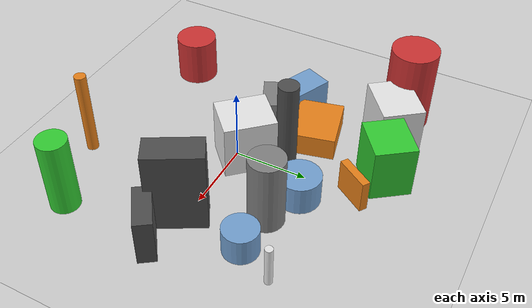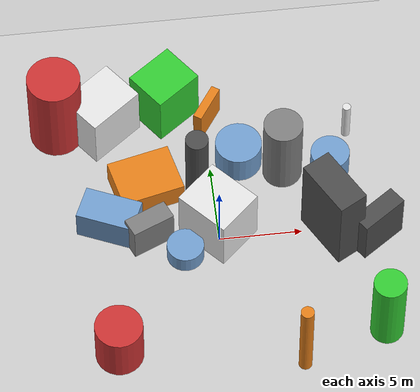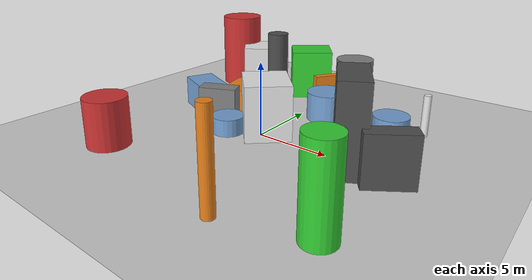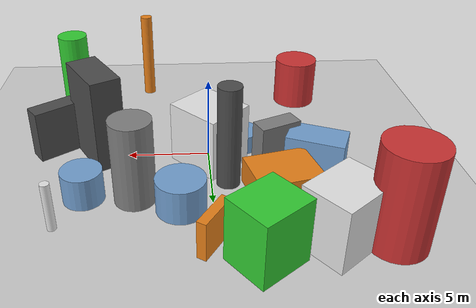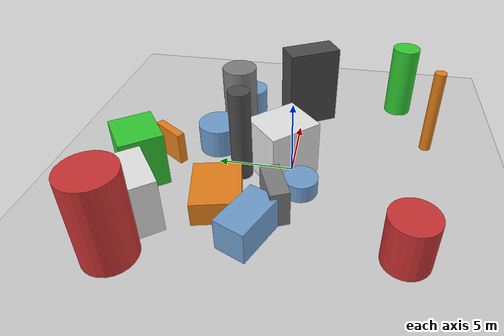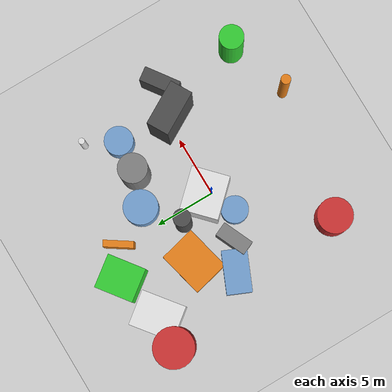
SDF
<?xml version='1.0'?>
<sdf version='1.6'>
  <world name='default'>
    <!-- Sun light -->
    <light name='sun' type='directional'>
      <cast_shadows>1</cast_shadows>
      <pose>0 0 10 0 0 0</pose>
      <diffuse>0.8 0.8 0.8 1</diffuse>
      <specular>0.2 0.2 0.2 1</specular>
      <attenuation>
        <range>1000</range>
        <constant>0.9</constant>
        <linear>0.01</linear>
        <quadratic>0.001</quadratic>
      </attenuation>
      <direction>-0.5 0.1 -0.9</direction>
    </light>

    <!-- Ground plane -->
    <model name='ground_plane'>
      <static>1</static>
      <link name='link'>
        <collision name='collision'>
          <geometry>
            <plane>
              <normal>0 0 1</normal>
              <size>100 100</size>
            </plane>
          </geometry>
          <surface>
            <contact>
              <collide_bitmask>65535</collide_bitmask>
              <ode/>
            </contact>
            <friction>
              <ode>
                <mu>100</mu>
                <mu2>50</mu2>
              </ode>
              <torsional><ode/></torsional>
            </friction>
            <bounce/>
          </surface>
          <max_contacts>10</max_contacts>
        </collision>
        <visual name='visual'>
          <cast_shadows>0</cast_shadows>
          <geometry>
            <plane>
              <normal>0 0 1</normal>
              <size>100 100</size>
            </plane>
          </geometry>
          <material>
            <script>
              <uri>file://media/materials/scripts/gazebo.material</uri>
              <n>Gazebo/Grey</n>
            </script>
          </material>
        </visual>
      </link>
    </model>

    <!-- Environment -->
    <magnetic_field>6e-06 2.3e-05 -4.2e-05</magnetic_field>
    <atmosphere type='adiabatic'/>
    <physics name='default_physics' default='0' type='ode'>
      <gravity>0 0 -9.8</gravity>
      <max_step_size>0.004</max_step_size>
      <real_time_factor>1</real_time_factor>
      <real_time_update_rate>250</real_time_update_rate>
    </physics>
    <scene>
      <ambient>0.4 0.4 0.4 1</ambient>
      <background>0.7 0.7 0.7 1</background>
      <shadows>1</shadows>
    </scene>
    <wind/>
    <spherical_coordinates>
      <surface_model>EARTH_WGS84</surface_model>
      <latitude_deg>0</latitude_deg>
      <longitude_deg>0</longitude_deg>
      <elevation>0</elevation>
      <heading_deg>0</heading_deg>
    </spherical_coordinates>

    <!-- ============ OBSTACLES (19) ============ -->
    <model name='obs_00'>
      <static>1</static>
      <link name='link'>
        <visual name='visual'>
          <geometry>
            <box>
              <size>1.2031 2.6846 2.4529</size>
            </box>
          </geometry>
          <material>
            <script>
              <n>Gazebo/Grey</n>
              <uri>file://media/materials/scripts/gazebo.material</uri>
            </script>
            <ambient>0.5 0.5 0.5 1</ambient>
          </material>
        </visual>
        <collision name='collision'>
          <geometry>
            <box>
              <size>1.2031 2.6846 2.4529</size>
            </box>
          </geometry>
          <max_contacts>10</max_contacts>
          <surface>
            <contact><ode/></contact>
            <bounce/>
            <friction>
              <ode><mu>1</mu><mu2>1</mu2></ode>
              <torsional><ode/></torsional>
            </friction>
          </surface>
        </collision>
      </link>
      <pose>-4.1603 0.4397 1.2264 0 0 1.9873</pose>
    </model>

    <model name='obs_01'>
      <static>1</static>
      <link name='link'>
        <visual name='visual'>
          <geometry>
            <cylinder>
              <radius>0.3954</radius>
              <length>5.9728</length>
            </cylinder>
          </geometry>
          <material>
            <script>
              <n>Gazebo/Orange</n>
              <uri>file://media/materials/scripts/gazebo.material</uri>
            </script>
            <ambient>0.9 0.5 0.1 1</ambient>
          </material>
        </visual>
        <collision name='collision'>
          <geometry>
            <cylinder>
              <radius>0.3954</radius>
              <length>5.9728</length>
            </cylinder>
          </geometry>
          <max_contacts>10</max_contacts>
          <surface>
            <contact><ode/></contact>
            <bounce/>
            <friction>
              <ode><mu>1</mu><mu2>1</mu2></ode>
              <torsional><ode/></torsional>
            </friction>
          </surface>
        </collision>
      </link>
      <pose>4.0419 -9.0844 2.9864 0 0 2.8940</pose>
    </model>

    <model name='obs_02'>
      <static>1</static>
      <link name='link'>
        <visual name='visual'>
          <geometry>
            <cylinder>
              <radius>1.4345</radius>
              <length>3.2567</length>
            </cylinder>
          </geometry>
          <material>
            <script>
              <n>Gazebo/Red</n>
              <uri>file://media/materials/scripts/gazebo.material</uri>
            </script>
            <ambient>0.8 0.2 0.2 1</ambient>
          </material>
        </visual>
        <collision name='collision'>
          <geometry>
            <cylinder>
              <radius>1.4345</radius>
              <length>3.2567</length>
            </cylinder>
          </geometry>
          <max_contacts>10</max_contacts>
          <surface>
            <contact><ode/></contact>
            <bounce/>
            <friction>
              <ode><mu>1</mu><mu2>1</mu2></ode>
              <torsional><ode/></torsional>
            </friction>
          </surface>
        </collision>
      </link>
      <pose>-6.7169 -7.1910 1.6283 0 0 1.5830</pose>
    </model>

    <model name='obs_03'>
      <static>1</static>
      <link name='link'>
        <visual name='visual'>
          <geometry>
            <cylinder>
              <radius>1.1902</radius>
              <length>5.0796</length>
            </cylinder>
          </geometry>
          <material>
            <script>
              <n>Gazebo/Grey</n>
              <uri>file://media/materials/scripts/gazebo.material</uri>
            </script>
            <ambient>0.5 0.5 0.5 1</ambient>
          </material>
        </visual>
        <collision name='collision'>
          <geometry>
            <cylinder>
              <radius>1.1902</radius>
              <length>5.0796</length>
            </cylinder>
          </geometry>
          <max_contacts>10</max_contacts>
          <surface>
            <contact><ode/></contact>
            <bounce/>
            <friction>
              <ode><mu>1</mu><mu2>1</mu2></ode>
              <torsional><ode/></torsional>
            </friction>
          </surface>
        </collision>
      </link>
      <pose>4.3371 4.4312 2.5398 0 0 2.3900</pose>
    </model>

    <model name='obs_04'>
      <static>1</static>
      <link name='link'>
        <visual name='visual'>
          <geometry>
            <box>
              <size>2.8599 3.6285 3.6695</size>
            </box>
          </geometry>
          <material>
            <script>
              <n>Gazebo/White</n>
              <uri>file://media/materials/scripts/gazebo.material</uri>
            </script>
            <ambient>0.9 0.9 0.9 1</ambient>
          </material>
        </visual>
        <collision name='collision'>
          <geometry>
            <box>
              <size>2.8599 3.6285 3.6695</size>
            </box>
          </geometry>
          <max_contacts>10</max_contacts>
          <surface>
            <contact><ode/></contact>
            <bounce/>
            <friction>
              <ode><mu>1</mu><mu2>1</mu2></ode>
              <torsional><ode/></torsional>
            </friction>
          </surface>
        </collision>
      </link>
      <pose>-6.2491 8.6043 1.8348 0 0 2.2309</pose>
    </model>

    <model name='obs_05'>
      <static>1</static>
      <link name='link'>
        <visual name='visual'>
          <geometry>
            <cylinder>
              <radius>1.1171</radius>
              <length>1.1769</length>
            </cylinder>
          </geometry>
          <material>
            <script>
              <n>Gazebo/Blue</n>
              <uri>file://media/materials/scripts/gazebo.material</uri>
            </script>
            <ambient>0.447 0.624 0.812 1</ambient>
          </material>
        </visual>
        <collision name='collision'>
          <geometry>
            <cylinder>
              <radius>1.1171</radius>
              <length>1.1769</length>
            </cylinder>
          </geometry>
          <max_contacts>10</max_contacts>
          <surface>
            <contact><ode/></contact>
            <bounce/>
            <friction>
              <ode><mu>1</mu><mu2>1</mu2></ode>
              <torsional><ode/></torsional>
            </friction>
          </surface>
        </collision>
      </link>
      <pose>-2.1421 -0.8591 0.5885 0 0 2.5394</pose>
    </model>

    <model name='obs_06'>
      <static>1</static>
      <link name='link'>
        <visual name='visual'>
          <geometry>
            <cylinder>
              <radius>0.2547</radius>
              <length>2.8688</length>
            </cylinder>
          </geometry>
          <material>
            <script>
              <n>Gazebo/White</n>
              <uri>file://media/materials/scripts/gazebo.material</uri>
            </script>
            <ambient>0.9 0.9 0.9 1</ambient>
          </material>
        </visual>
        <collision name='collision'>
          <geometry>
            <cylinder>
              <radius>0.2547</radius>
              <length>2.8688</length>
            </cylinder>
          </geometry>
          <max_contacts>10</max_contacts>
          <surface>
            <contact><ode/></contact>
            <bounce/>
            <friction>
              <ode><mu>1</mu><mu2>1</mu2></ode>
              <torsional><ode/></torsional>
            </friction>
          </surface>
        </collision>
      </link>
      <pose>8.5325 6.7493 1.4344 0 0 0.1667</pose>
    </model>

    <model name='obs_07'>
      <static>1</static>
      <link name='link'>
        <visual name='visual'>
          <geometry>
            <cylinder>
              <radius>1.4143</radius>
              <length>2.0250</length>
            </cylinder>
          </geometry>
          <material>
            <script>
              <n>Gazebo/Blue</n>
              <uri>file://media/materials/scripts/gazebo.material</uri>
            </script>
            <ambient>0.447 0.624 0.812 1</ambient>
          </material>
        </visual>
        <collision name='collision'>
          <geometry>
            <cylinder>
              <radius>1.4143</radius>
              <length>2.0250</length>
            </cylinder>
          </geometry>
          <max_contacts>10</max_contacts>
          <surface>
            <contact><ode/></contact>
            <bounce/>
            <friction>
              <ode><mu>1</mu><mu2>1</mu2></ode>
              <torsional><ode/></torsional>
            </friction>
          </surface>
        </collision>
      </link>
      <pose>1.7762 5.4429 1.0125 0 0 3.0899</pose>
    </model>

    <model name='obs_08'>
      <static>1</static>
      <link name='link'>
        <visual name='visual'>
          <geometry>
            <cylinder>
              <radius>0.6960</radius>
              <length>6.2752</length>
            </cylinder>
          </geometry>
          <material>
            <script>
              <n>Gazebo/DarkGrey</n>
              <uri>file://media/materials/scripts/gazebo.material</uri>
            </script>
            <ambient>0.3 0.3 0.3 1</ambient>
          </material>
        </visual>
        <collision name='collision'>
          <geometry>
            <cylinder>
              <radius>0.6960</radius>
              <length>6.2752</length>
            </cylinder>
          </geometry>
          <max_contacts>10</max_contacts>
          <surface>
            <contact><ode/></contact>
            <bounce/>
            <friction>
              <ode><mu>1</mu><mu2>1</mu2></ode>
              <torsional><ode/></torsional>
            </friction>
          </surface>
        </collision>
      </link>
      <pose>-0.9899 3.1691 3.1376 0 0 2.1696</pose>
    </model>

    <model name='obs_09'>
      <static>1</static>
      <link name='link'>
        <visual name='visual'>
          <geometry>
            <cylinder>
              <radius>0.9873</radius>
              <length>5.3128</length>
            </cylinder>
          </geometry>
          <material>
            <script>
              <n>Gazebo/Green</n>
              <uri>file://media/materials/scripts/gazebo.material</uri>
            </script>
            <ambient>0.2 0.8 0.2 1</ambient>
          </material>
        </visual>
        <collision name='collision'>
          <geometry>
            <cylinder>
              <radius>0.9873</radius>
              <length>5.3128</length>
            </cylinder>
          </geometry>
          <max_contacts>10</max_contacts>
          <surface>
            <contact><ode/></contact>
            <bounce/>
            <friction>
              <ode><mu>1</mu><mu2>1</mu2></ode>
              <torsional><ode/></torsional>
            </friction>
          </surface>
        </collision>
      </link>
      <pose>9.1238 -7.3073 2.6564 0 0 1.1268</pose>
    </model>

    <model name='obs_10'>
      <static>1</static>
      <link name='link'>
        <visual name='visual'>
          <geometry>
            <box>
              <size>3.5269 3.0984 3.8064</size>
            </box>
          </geometry>
          <material>
            <script>
              <n>Gazebo/White</n>
              <uri>file://media/materials/scripts/gazebo.material</uri>
            </script>
            <ambient>0.9 0.9 0.9 1</ambient>
          </material>
        </visual>
        <collision name='collision'>
          <geometry>
            <box>
              <size>3.5269 3.0984 3.8064</size>
            </box>
          </geometry>
          <max_contacts>10</max_contacts>
          <surface>
            <contact><ode/></contact>
            <bounce/>
            <friction>
              <ode><mu>1</mu><mu2>1</mu2></ode>
              <torsional><ode/></torsional>
            </friction>
          </surface>
        </collision>
      </link>
      <pose>-0.0234 0.6073 1.9032 0 0 2.3232</pose>
    </model>

    <model name='obs_11'>
      <static>1</static>
      <link name='link'>
        <visual name='visual'>
          <geometry>
            <cylinder>
              <radius>1.6241</radius>
              <length>5.8729</length>
            </cylinder>
          </geometry>
          <material>
            <script>
              <n>Gazebo/Red</n>
              <uri>file://media/materials/scripts/gazebo.material</uri>
            </script>
            <ambient>0.8 0.2 0.2 1</ambient>
          </material>
        </visual>
        <collision name='collision'>
          <geometry>
            <cylinder>
              <radius>1.6241</radius>
              <length>5.8729</length>
            </cylinder>
          </geometry>
          <max_contacts>10</max_contacts>
          <surface>
            <contact><ode/></contact>
            <bounce/>
            <friction>
              <ode><mu>1</mu><mu2>1</mu2></ode>
              <torsional><ode/></torsional>
            </friction>
          </surface>
        </collision>
      </link>
      <pose>-9.0286 8.7062 2.9364 0 0 1.6051</pose>
    </model>

    <model name='obs_12'>
      <static>1</static>
      <link name='link'>
        <visual name='visual'>
          <geometry>
            <box>
              <size>3.7427 1.8564 5.7835</size>
            </box>
          </geometry>
          <material>
            <script>
              <n>Gazebo/DarkGrey</n>
              <uri>file://media/materials/scripts/gazebo.material</uri>
            </script>
            <ambient>0.3 0.3 0.3 1</ambient>
          </material>
        </visual>
        <collision name='collision'>
          <geometry>
            <box>
              <size>3.7427 1.8564 5.7835</size>
            </box>
          </geometry>
          <max_contacts>10</max_contacts>
          <surface>
            <contact><ode/></contact>
            <bounce/>
            <friction>
              <ode><mu>1</mu><mu2>1</mu2></ode>
              <torsional><ode/></torsional>
            </friction>
          </surface>
        </collision>
      </link>
      <pose>6.7763 -0.3414 2.8918 0 0 2.0876</pose>
    </model>

    <model name='obs_13'>
      <static>1</static>
      <link name='link'>
        <visual name='visual'>
          <geometry>
            <box>
              <size>2.4324 0.5454 2.2567</size>
            </box>
          </geometry>
          <material>
            <script>
              <n>Gazebo/Orange</n>
              <uri>file://media/materials/scripts/gazebo.material</uri>
            </script>
            <ambient>0.9 0.5 0.1 1</ambient>
          </material>
        </visual>
        <collision name='collision'>
          <geometry>
            <box>
              <size>2.4324 0.5454 2.2567</size>
            </box>
          </geometry>
          <max_contacts>10</max_contacts>
          <surface>
            <contact><ode/></contact>
            <bounce/>
            <friction>
              <ode><mu>1</mu><mu2>1</mu2></ode>
              <torsional><ode/></torsional>
            </friction>
          </surface>
        </collision>
      </link>
      <pose>0.1667 8.4232 1.1284 0 0 0.9822</pose>
    </model>

    <model name='obs_14'>
      <static>1</static>
      <link name='link'>
        <visual name='visual'>
          <geometry>
            <box>
              <size>3.5116 2.0507 2.1277</size>
            </box>
          </geometry>
          <material>
            <script>
              <n>Gazebo/Blue</n>
              <uri>file://media/materials/scripts/gazebo.material</uri>
            </script>
            <ambient>0.447 0.624 0.812 1</ambient>
          </material>
        </visual>
        <collision name='collision'>
          <geometry>
            <box>
              <size>3.5116 2.0507 2.1277</size>
            </box>
          </geometry>
          <max_contacts>10</max_contacts>
          <surface>
            <contact><ode/></contact>
            <bounce/>
            <friction>
              <ode><mu>1</mu><mu2>1</mu2></ode>
              <torsional><ode/></torsional>
            </friction>
          </surface>
        </collision>
      </link>
      <pose>-6.4560 1.5711 1.0639 0 0 2.7296</pose>
    </model>

    <model name='obs_15'>
      <static>1</static>
      <link name='link'>
        <visual name='visual'>
          <geometry>
            <box>
              <size>2.7667 3.1429 3.7331</size>
            </box>
          </geometry>
          <material>
            <script>
              <n>Gazebo/Green</n>
              <uri>file://media/materials/scripts/gazebo.material</uri>
            </script>
            <ambient>0.2 0.8 0.2 1</ambient>
          </material>
        </visual>
        <collision name='collision'>
          <geometry>
            <box>
              <size>2.7667 3.1429 3.7331</size>
            </box>
          </geometry>
          <max_contacts>10</max_contacts>
          <surface>
            <contact><ode/></contact>
            <bounce/>
            <friction>
              <ode><mu>1</mu><mu2>1</mu2></ode>
              <torsional><ode/></torsional>
            </friction>
          </surface>
        </collision>
      </link>
      <pose>-2.3067 9.5900 1.8665 0 0 2.2137</pose>
    </model>

    <model name='obs_16'>
      <static>1</static>
      <link name='link'>
        <visual name='visual'>
          <geometry>
            <box>
              <size>3.0372 1.1772 3.2441</size>
            </box>
          </geometry>
          <material>
            <script>
              <n>Gazebo/DarkGrey</n>
              <uri>file://media/materials/scripts/gazebo.material</uri>
            </script>
            <ambient>0.3 0.3 0.3 1</ambient>
          </material>
        </visual>
        <collision name='collision'>
          <geometry>
            <box>
              <size>3.0372 1.1772 3.2441</size>
            </box>
          </geometry>
          <max_contacts>10</max_contacts>
          <surface>
            <contact><ode/></contact>
            <bounce/>
            <friction>
              <ode><mu>1</mu><mu2>1</mu2></ode>
              <torsional><ode/></torsional>
            </friction>
          </surface>
        </collision>
      </link>
      <pose>9.4098 -0.9431 1.6220 0 0 0.6172</pose>
    </model>

    <model name='obs_17'>
      <static>1</static>
      <link name='link'>
        <visual name='visual'>
          <geometry>
            <box>
              <size>3.8687 3.0728 1.5968</size>
            </box>
          </geometry>
          <material>
            <script>
              <n>Gazebo/Orange</n>
              <uri>file://media/materials/scripts/gazebo.material</uri>
            </script>
            <ambient>0.9 0.5 0.1 1</ambient>
          </material>
        </visual>
        <collision name='collision'>
          <geometry>
            <box>
              <size>3.8687 3.0728 1.5968</size>
            </box>
          </geometry>
          <max_contacts>10</max_contacts>
          <surface>
            <contact><ode/></contact>
            <bounce/>
            <friction>
              <ode><mu>1</mu><mu2>1</mu2></ode>
              <torsional><ode/></torsional>
            </friction>
          </surface>
        </collision>
      </link>
      <pose>-4.0217 4.0299 0.7984 0 0 0.2340</pose>
    </model>

    <model name='obs_18'>
      <static>1</static>
      <link name='link'>
        <visual name='visual'>
          <geometry>
            <cylinder>
              <radius>1.1797</radius>
              <length>1.9105</length>
            </cylinder>
          </geometry>
          <material>
            <script>
              <n>Gazebo/Blue</n>
              <uri>file://media/materials/scripts/gazebo.material</uri>
            </script>
            <ambient>0.447 0.624 0.812 1</ambient>
          </material>
        </visual>
        <collision name='collision'>
          <geometry>
            <cylinder>
              <radius>1.1797</radius>
              <length>1.9105</length>
            </cylinder>
          </geometry>
          <max_contacts>10</max_contacts>
          <surface>
            <contact><ode/></contact>
            <bounce/>
            <friction>
              <ode><mu>1</mu><mu2>1</mu2></ode>
              <torsional><ode/></torsional>
            </friction>
          </surface>
        </collision>
      </link>
      <pose>7.2142 4.2375 0.9552 0 0 1.3462</pose>
    </model>

    <!-- GUI camera -->
    <gui fullscreen='0'>
      <camera name='user_camera'>
        <pose>-15 0 18 0 0.85 0.15</pose>
        <view_controller>orbit</view_controller>
        <projection_type>perspective</projection_type>
      </camera>
    </gui>
  </world>
</sdf>
